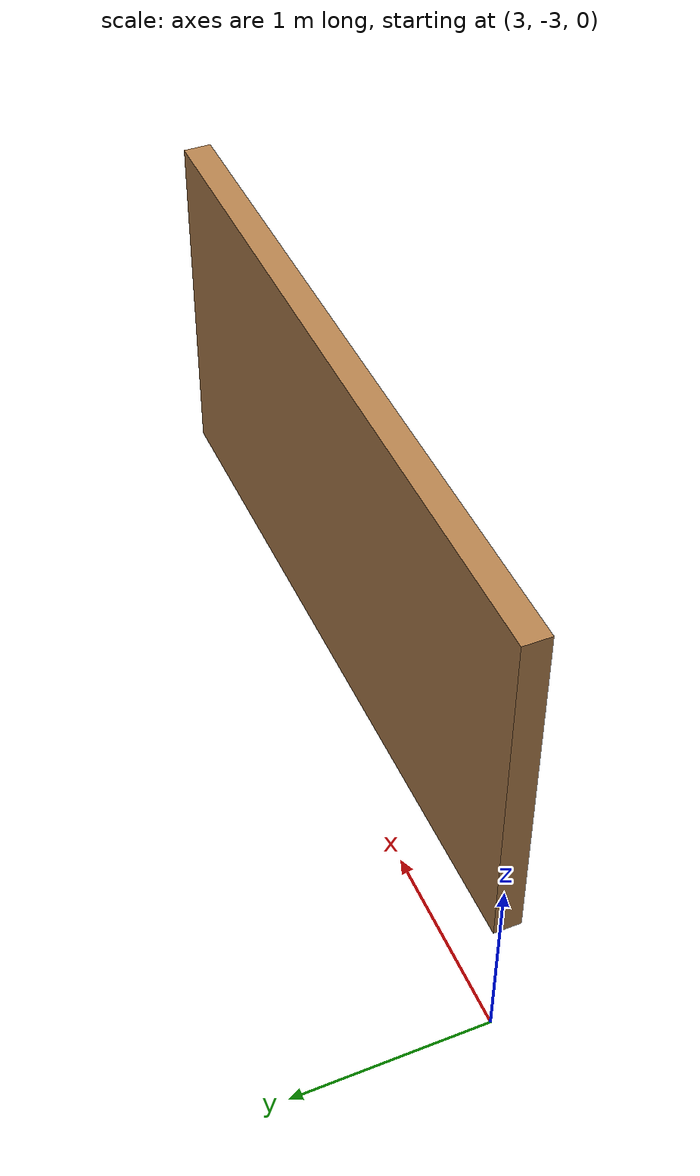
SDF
<?xml version='1.0'?>
<sdf version='1.7'>
  <model name='wall3'>
    <pose>3.717 -1.688 0 0 -0 0</pose>
    <link name='Wall_39'>
      <collision name='Wall_39_Collision'>
        <geometry>
          <box>
            <size>4 0.15 2</size>
          </box>
        </geometry>
        <pose>0 0 1 0 -0 0</pose>
      </collision>
      <visual name='Wall_39_Visual'>
        <pose>0 0 1 0 -0 0</pose>
        <geometry>
          <box>
            <size>4 0.15 2</size>
          </box>
        </geometry>
        <material>
          <script>
            <uri>file://media/materials/scripts/gazebo.material</uri>
            <name>Gazebo/Wood</name>
          </script>
          <ambient>1 1 1 1</ambient>
        </material>
        <meta>
          <layer>0</layer>
        </meta>
      </visual>
      <pose>1.717 -1.613 0 0 -0 3.14159</pose>
    </link>
    <static>1</static>
  </model>
</sdf>
